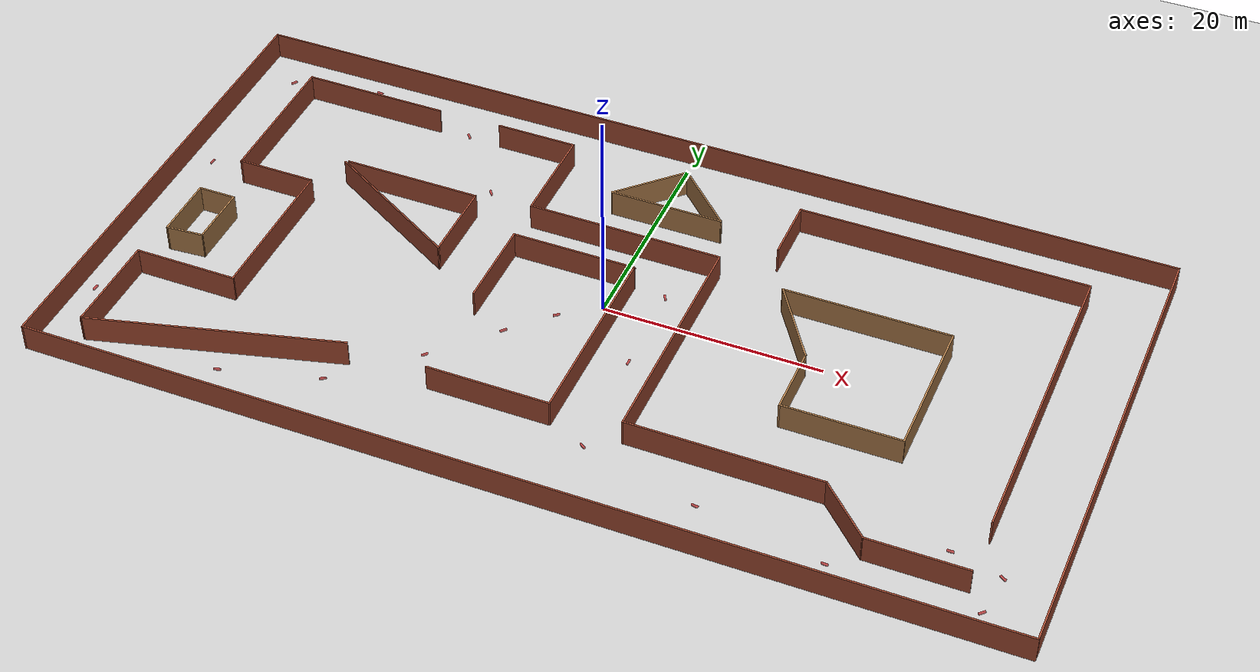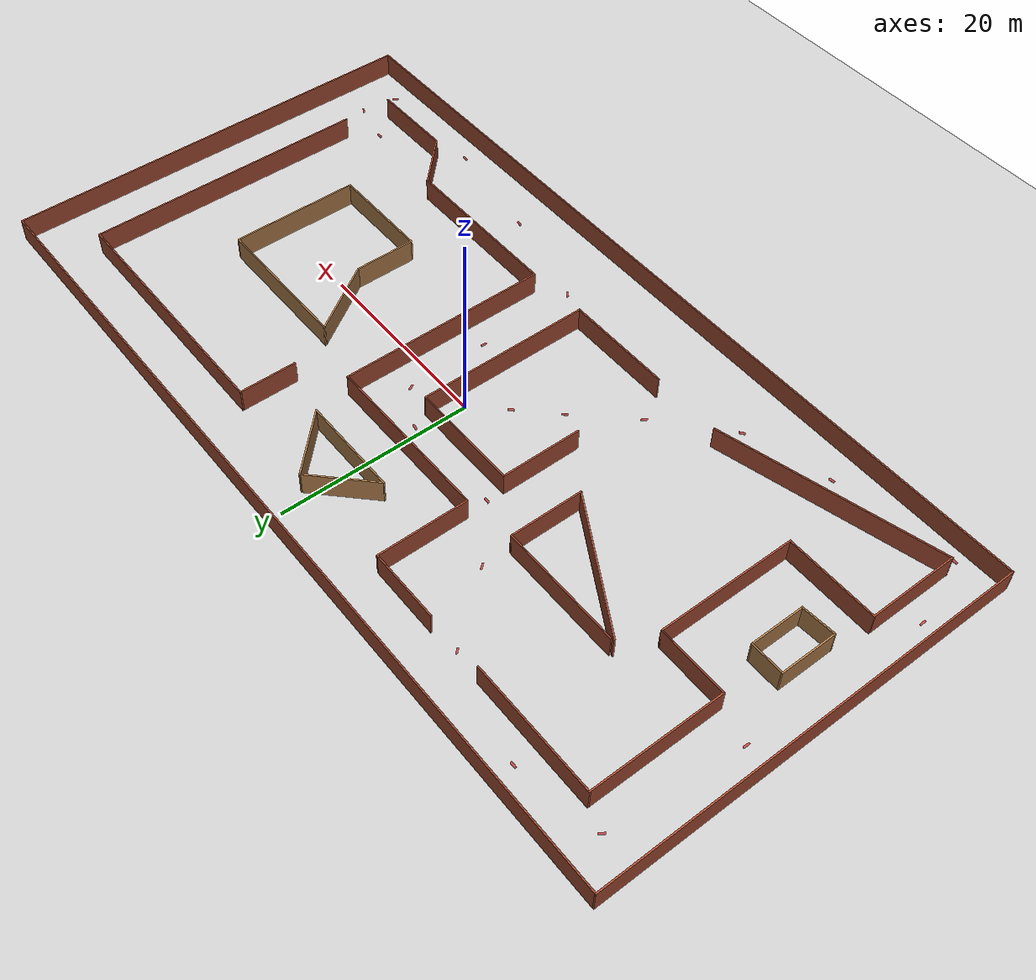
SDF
<sdf version="1.6">
 <world name="default">
  <model name="ground_plane">
   <static>1</static>
   <link name="link">
    <collision name="collision">
     <geometry><plane><normal>0 0 1</normal><size>100 100</size></plane></geometry>
     <surface><friction><ode><mu>100</mu><mu2>50</mu2></ode></friction></surface>
    </collision>
    <visual name="visual">
     <cast_shadows>0</cast_shadows>
     <geometry><plane><normal>0 0 1</normal><size>100 100</size></plane></geometry>
     <material>
      <script><uri>file://media/materials/scripts/gazebo.material</uri><name>Gazebo/Tertiary</name></script>
     </material>
    </visual>
   </link>
  </model>
  <light name="sun" type="directional">
   <pose>0 0 10 0 -0 0</pose>
   <diffuse>0.8 0.8 0.8 1</diffuse>
   <specular>0.2 0.2 0.2 1</specular>
   <attenuation>
    <range>1000</range>
    <constant>0.9</constant>
    <linear>0.01</linear>
    <quadratic>0.001</quadratic>
   </attenuation>
   <direction>-0.5 0.1 -0.9</direction>
  </light>
  <model name="maze_office">
   <pose>0.883362 -0.984451 0 0 -0 0</pose>
   <link name="Wall_10">
    <collision name="Wall_10_Collision">
     <geometry><box><size>13.5 0.15 2.5</size></box></geometry>
     <pose>0 0 1.25 0 -0 0</pose>
    </collision>
    <visual name="Wall_10_Visual">
     <pose>0 0 1.25 0 -0 0</pose>
     <geometry><box><size>13.5 0.15 2.5</size></box></geometry>
     <material>
      <script><uri>file://media/materials/scripts/gazebo.material</uri><name>Gazebo/Bricks</name></script>
      <ambient>1 1 1 1</ambient>
     </material>
     <meta><layer>0</layer></meta>
    </visual>
    <pose>-31.0468 17.7223 0 0 -0 3.14159</pose>
   </link>
   <link name="Wall_11">
    <collision name="Wall_11_Collision">
     <geometry><box><size>13.75 0.15 2.5</size></box></geometry>
     <pose>0 0 1.25 0 -0 0</pose>
    </collision>
    <visual name="Wall_11_Visual">
     <pose>0 0 1.25 0 -0 0</pose>
     <geometry><box><size>13.75 0.15 2.5</size></box></geometry>
     <material>
      <script><uri>file://media/materials/scripts/gazebo.material</uri><name>Gazebo/Bricks</name></script>
      <ambient>1 1 1 1</ambient>
     </material>
     <meta><layer>0</layer></meta>
    </visual>
    <pose>-37.7218 10.9223 0 0 -0 -1.5708</pose>
   </link>
   <link name="Wall_12">
    <collision name="Wall_12_Collision">
     <geometry><box><size>7.25 0.15 2.5</size></box></geometry>
     <pose>0 0 1.25 0 -0 0</pose>
    </collision>
    <visual name="Wall_12_Visual">
     <pose>0 0 1.25 0 -0 0</pose>
     <geometry><box><size>7.25 0.15 2.5</size></box></geometry>
     <material>
      <script><uri>file://media/materials/scripts/gazebo.material</uri><name>Gazebo/Bricks</name></script>
      <ambient>1 1 1 1</ambient>
     </material>
     <meta><layer>0</layer></meta>
    </visual>
    <pose>-34.1718 4.12233 0 0 -0 0</pose>
   </link>
   <link name="Wall_13">
    <collision name="Wall_13_Collision">
     <geometry><box><size>14.5 0.15 2.5</size></box></geometry>
     <pose>0 0 1.25 0 -0 0</pose>
    </collision>
    <visual name="Wall_13_Visual">
     <pose>0 0 1.25 0 -0 0</pose>
     <geometry><box><size>14.5 0.15 2.5</size></box></geometry>
     <material>
      <script><uri>file://media/materials/scripts/gazebo.material</uri><name>Gazebo/Bricks</name></script>
      <ambient>1 1 1 1</ambient>
     </material>
     <meta><layer>0</layer></meta>
    </visual>
    <pose>-30.6218 -3.05267 0 0 -0 -1.5708</pose>
   </link>
   <link name="Wall_14">
    <collision name="Wall_14_Collision">
     <geometry><box><size>9.5 0.15 2.5</size></box></geometry>
     <pose>0 0 1.25 0 -0 0</pose>
    </collision>
    <visual name="Wall_14_Visual">
     <pose>0 0 1.25 0 -0 0</pose>
     <geometry><box><size>9.5 0.15 2.5</size></box></geometry>
     <material>
      <script><uri>file://media/materials/scripts/gazebo.material</uri><name>Gazebo/Bricks</name></script>
      <ambient>1 1 1 1</ambient>
     </material>
     <meta><layer>0</layer></meta>
    </visual>
    <pose>-35.2968 -10.2277 0 0 -0 3.14159</pose>
   </link>
   <link name="Wall_15">
    <collision name="Wall_15_Collision">
     <geometry><box><size>9.5 0.15 2.5</size></box></geometry>
     <pose>0 0 1.25 0 -0 0</pose>
    </collision>
    <visual name="Wall_15_Visual">
     <pose>0 0 1.25 0 -0 0</pose>
     <geometry><box><size>9.5 0.15 2.5</size></box></geometry>
     <material>
      <script><uri>file://media/materials/scripts/gazebo.material</uri><name>Gazebo/Bricks</name></script>
      <ambient>1 1 1 1</ambient>
     </material>
     <meta><layer>0</layer></meta>
    </visual>
    <pose>-39.9718 -14.9027 0 0 -0 -1.5708</pose>
   </link>
   <link name="Wall_17">
    <collision name="Wall_17_Collision">
     <geometry><box><size>23 0.15 2.5</size></box></geometry>
     <pose>0 0 1.25 0 -0 0</pose>
    </collision>
    <visual name="Wall_17_Visual">
     <pose>0 0 1.25 0 -0 0</pose>
     <geometry><box><size>23 0.15 2.5</size></box></geometry>
     <material>
      <script><uri>file://media/materials/scripts/gazebo.material</uri><name>Gazebo/Bricks</name></script>
      <ambient>1 1 1 1</ambient>
     </material>
     <meta><layer>0</layer></meta>
    </visual>
    <pose>-28.9361 -16.6207 0 0 -0 0.261799</pose>
   </link>
   <link name="Wall_19">
    <collision name="Wall_19_Collision">
     <geometry><box><size>11.25 0.15 2.5</size></box></geometry>
     <pose>0 0 1.25 0 -0 0</pose>
    </collision>
    <visual name="Wall_19_Visual">
     <pose>0 0 1.25 0 -0 0</pose>
     <geometry><box><size>11.25 0.15 2.5</size></box></geometry>
     <material>
      <script><uri>file://media/materials/scripts/gazebo.material</uri><name>Gazebo/Bricks</name></script>
      <ambient>1 1 1 1</ambient>
     </material>
     <meta><layer>0</layer></meta>
    </visual>
    <pose>-4.96128 -13.7113 0 0 -0 0</pose>
   </link>
   <link name="Wall_20">
    <collision name="Wall_20_Collision">
     <geometry><box><size>18.25 0.15 2.5</size></box></geometry>
     <pose>0 0 1.25 0 -0 0</pose>
    </collision>
    <visual name="Wall_20_Visual">
     <pose>0 0 1.25 0 -0 0</pose>
     <geometry><box><size>18.25 0.15 2.5</size></box></geometry>
     <material>
      <script><uri>file://media/materials/scripts/gazebo.material</uri><name>Gazebo/Bricks</name></script>
      <ambient>1 1 1 1</ambient>
     </material>
     <meta><layer>0</layer></meta>
    </visual>
    <pose>0.588724 -4.66132 0 0 -0 1.5708</pose>
   </link>
   <link name="Wall_21">
    <collision name="Wall_21_Collision">
     <geometry><box><size>11.5 0.15 2.5</size></box></geometry>
     <pose>0 0 1.25 0 -0 0</pose>
    </collision>
    <visual name="Wall_21_Visual">
     <pose>0 0 1.25 0 -0 0</pose>
     <geometry><box><size>11.5 0.15 2.5</size></box></geometry>
     <material>
      <script><uri>file://media/materials/scripts/gazebo.material</uri><name>Gazebo/Bricks</name></script>
      <ambient>1 1 1 1</ambient>
     </material>
     <meta><layer>0</layer></meta>
    </visual>
    <pose>-5.08628 4.38868 0 0 -0 3.14159</pose>
   </link>
   <link name="Wall_22">
    <collision name="Wall_22_Collision">
     <geometry><box><size>8.5 0.15 2.5</size></box></geometry>
     <pose>0 0 1.25 0 -0 0</pose>
    </collision>
    <visual name="Wall_22_Visual">
     <pose>0 0 1.25 0 -0 0</pose>
     <geometry><box><size>8.5 0.15 2.5</size></box></geometry>
     <material>
      <script><uri>file://media/materials/scripts/gazebo.material</uri><name>Gazebo/Bricks</name></script>
      <ambient>1 1 1 1</ambient>
     </material>
     <meta><layer>0</layer></meta>
    </visual>
    <pose>-10.7613 0.213675 0 0 -0 -1.5708</pose>
   </link>
   <link name="Wall_24">
    <collision name="Wall_24_Collision">
     <geometry><box><size>7.5 0.15 2.5</size></box></geometry>
     <pose>0 0 1.25 0 -0 0</pose>
    </collision>
    <visual name="Wall_24_Visual">
     <pose>0 0 1.25 0 -0 0</pose>
     <geometry><box><size>7.5 0.15 2.5</size></box></geometry>
     <material>
      <script><uri>file://media/materials/scripts/gazebo.material</uri><name>Gazebo/Bricks</name></script>
      <ambient>1 1 1 1</ambient>
     </material>
     <meta><layer>0</layer></meta>
    </visual>
    <pose>-14.6328 17.8461 0 0 -0 0</pose>
   </link>
   <link name="Wall_25">
    <collision name="Wall_25_Collision">
     <geometry><box><size>9.5 0.15 2.5</size></box></geometry>
     <pose>0 0 1.25 0 -0 0</pose>
    </collision>
    <visual name="Wall_25_Visual">
     <pose>0 0 1.25 0 -0 0</pose>
     <geometry><box><size>9.5 0.15 2.5</size></box></geometry>
     <material>
      <script><uri>file://media/materials/scripts/gazebo.material</uri><name>Gazebo/Bricks</name></script>
      <ambient>1 1 1 1</ambient>
     </material>
     <meta><layer>0</layer></meta>
    </visual>
    <pose>-10.9578 13.1711 0 0 -0 -1.5708</pose>
   </link>
   <link name="Wall_26">
    <collision name="Wall_26_Collision">
     <geometry><box><size>18 0.15 2.5</size></box></geometry>
     <pose>0 0 1.25 0 -0 0</pose>
    </collision>
    <visual name="Wall_26_Visual">
     <pose>0 0 1.25 0 -0 0</pose>
     <geometry><box><size>18 0.15 2.5</size></box></geometry>
     <material>
      <script><uri>file://media/materials/scripts/gazebo.material</uri><name>Gazebo/Bricks</name></script>
      <ambient>1 1 1 1</ambient>
     </material>
     <meta><layer>0</layer></meta>
    </visual>
    <pose>-2.03281 8.49608 0 0 -0 0</pose>
   </link>
   <link name="Wall_27">
    <collision name="Wall_27_Collision">
     <geometry><box><size>22 0.15 2.5</size></box></geometry>
     <pose>0 0 1.25 0 -0 0</pose>
    </collision>
    <visual name="Wall_27_Visual">
     <pose>0 0 1.25 0 -0 0</pose>
     <geometry><box><size>22 0.15 2.5</size></box></geometry>
     <material>
      <script><uri>file://media/materials/scripts/gazebo.material</uri><name>Gazebo/Bricks</name></script>
      <ambient>1 1 1 1</ambient>
     </material>
     <meta><layer>0</layer></meta>
    </visual>
    <pose>6.89219 -2.42892 0 0 -0 -1.5708</pose>
   </link>
   <link name="Wall_28">
    <collision name="Wall_28_Collision">
     <geometry><box><size>17.5 0.15 2.5</size></box></geometry>
     <pose>0 0 1.25 0 -0 0</pose>
    </collision>
    <visual name="Wall_28_Visual">
     <pose>0 0 1.25 0 -0 0</pose>
     <geometry><box><size>17.5 0.15 2.5</size></box></geometry>
     <material>
      <script><uri>file://media/materials/scripts/gazebo.material</uri><name>Gazebo/Bricks</name></script>
      <ambient>1 1 1 1</ambient>
     </material>
     <meta><layer>0</layer></meta>
    </visual>
    <pose>15.5672 -13.3539 0 0 -0 0</pose>
   </link>
   <link name="Wall_29">
    <collision name="Wall_29_Collision">
     <geometry><box><size>6.5 0.15 2.5</size></box></geometry>
     <pose>0 0 1.25 0 -0 0</pose>
    </collision>
    <visual name="Wall_29_Visual">
     <pose>0 0 1.25 0 -0 0</pose>
     <geometry><box><size>6.5 0.15 2.5</size></box></geometry>
     <material>
      <script><uri>file://media/materials/scripts/gazebo.material</uri><name>Gazebo/Bricks</name></script>
      <ambient>1 1 1 1</ambient>
     </material>
     <meta><layer>0</layer></meta>
    </visual>
    <pose>26.4873 -15.599 0 0 -0 -0.785398</pose>
   </link>
   <link name="Wall_3">
    <collision name="Wall_3_Collision">
     <geometry><box><size>88 0.15 2.5</size></box></geometry>
     <pose>0 0 1.25 0 -0 0</pose>
    </collision>
    <visual name="Wall_3_Visual">
     <pose>0 0 1.25 0 -0 0</pose>
     <geometry><box><size>88 0.15 2.5</size></box></geometry>
     <material>
      <script><uri>file://media/materials/scripts/gazebo.material</uri><name>Gazebo/Bricks</name></script>
      <ambient>1 1 1 1</ambient>
     </material>
     <meta><layer>0</layer></meta>
    </visual>
    <pose>-1e-06 22.425 0 0 -0 0</pose>
   </link>
   <link name="Wall_30">
    <collision name="Wall_30_Collision">
     <geometry><box><size>8.88621 0.15 2.5</size></box></geometry>
     <pose>0 0 1.25 0 -0 0</pose>
    </collision>
    <visual name="Wall_30_Visual">
     <pose>0 0 1.25 0 -0 0</pose>
     <geometry><box><size>8.88621 0.15 2.5</size></box></geometry>
     <material>
      <script><uri>file://media/materials/scripts/gazebo.material</uri><name>Gazebo/Bricks</name></script>
      <ambient>1 1 1 1</ambient>
     </material>
     <meta><layer>0</layer></meta>
    </visual>
    <pose>33.1004 -17.844 0 0 -0 0</pose>
   </link>
   <link name="Wall_32">
    <collision name="Wall_32_Collision">
     <geometry><box><size>26.3862 0.15 2.5</size></box></geometry>
     <pose>0 0 1.25 0 -0 0</pose>
    </collision>
    <visual name="Wall_32_Visual">
     <pose>0 0 1.25 0 -0 0</pose>
     <geometry><box><size>26.3862 0.15 2.5</size></box></geometry>
     <material>
      <script><uri>file://media/materials/scripts/gazebo.material</uri><name>Gazebo/Bricks</name></script>
      <ambient>1 1 1 1</ambient>
     </material>
     <meta><layer>0</layer></meta>
    </visual>
    <pose>24.3504 17.256 0 0 -0 3.14159</pose>
   </link>
   <link name="Wall_33">
    <collision name="Wall_33_Collision">
     <geometry><box><size>6 0.15 2.5</size></box></geometry>
     <pose>0 0 1.25 0 -0 0</pose>
    </collision>
    <visual name="Wall_33_Visual">
     <pose>0 0 1.25 0 -0 0</pose>
     <geometry><box><size>6 0.15 2.5</size></box></geometry>
     <material>
      <script><uri>file://media/materials/scripts/gazebo.material</uri><name>Gazebo/Bricks</name></script>
      <ambient>1 1 1 1</ambient>
     </material>
     <meta><layer>0</layer></meta>
    </visual>
    <pose>11.2323 14.331 0 0 -0 -1.5708</pose>
   </link>
   <link name="Wall_35">
    <collision name="Wall_35_Collision">
     <geometry><box><size>29.75 0.15 2.5</size></box></geometry>
     <pose>0 0 1.25 0 -0 0</pose>
    </collision>
    <visual name="Wall_35_Visual">
     <pose>0 0 1.25 0 -0 0</pose>
     <geometry><box><size>29.75 0.15 2.5</size></box></geometry>
     <material>
      <script><uri>file://media/materials/scripts/gazebo.material</uri><name>Gazebo/Bricks</name></script>
      <ambient>1 1 1 1</ambient>
     </material>
     <meta><layer>0</layer></meta>
    </visual>
    <pose>37.4685 2.45595 0 0 -0 -1.5708</pose>
   </link>
   <link name="Wall_37">
    <collision name="Wall_37_Collision">
     <geometry><box><size>12.75 0.15 2.5</size></box></geometry>
     <pose>0 0 1.25 0 -0 0</pose>
    </collision>
    <visual name="Wall_37_Visual">
     <pose>0 0 1.25 0 -0 0</pose>
     <geometry><box><size>12.75 0.15 2.5</size></box></geometry>
     <material>
      <script><uri>file://media/materials/scripts/gazebo.material</uri><name>Gazebo/Bricks</name></script>
      <ambient>1 1 1 1</ambient>
     </material>
     <meta><layer>0</layer></meta>
    </visual>
    <pose>-22.4032 7.82196 0 0 -0 0</pose>
   </link>
   <link name="Wall_38">
    <collision name="Wall_38_Collision">
     <geometry><box><size>7.75 0.15 2.5</size></box></geometry>
     <pose>0 0 1.25 0 -0 0</pose>
    </collision>
    <visual name="Wall_38_Visual">
     <pose>0 0 1.25 0 -0 0</pose>
     <geometry><box><size>7.75 0.15 2.5</size></box></geometry>
     <material>
      <script><uri>file://media/materials/scripts/gazebo.material</uri><name>Gazebo/Bricks</name></script>
      <ambient>1 1 1 1</ambient>
     </material>
     <meta><layer>0</layer></meta>
    </visual>
    <pose>-16.1032 4.02196 0 0 -0 -1.5708</pose>
   </link>
   <link name="Wall_39">
    <collision name="Wall_39_Collision">
     <geometry><box><size>15 0.15 2.5</size></box></geometry>
     <pose>0 0 1.25 0 -0 0</pose>
    </collision>
    <visual name="Wall_39_Visual">
     <pose>0 0 1.25 0 -0 0</pose>
     <geometry><box><size>15 0.15 2.5</size></box></geometry>
     <material>
      <script><uri>file://media/materials/scripts/gazebo.material</uri><name>Gazebo/Bricks</name></script>
      <ambient>1 1 1 1</ambient>
     </material>
     <meta><layer>0</layer></meta>
    </visual>
    <pose>-22.5334 3.93446 0 0 -0 2.61799</pose>
   </link>
   <link name="Wall_4">
    <collision name="Wall_4_Collision">
     <geometry><box><size>45 0.15 2.5</size></box></geometry>
     <pose>0 0 1.25 0 -0 0</pose>
    </collision>
    <visual name="Wall_4_Visual">
     <pose>0 0 1.25 0 -0 0</pose>
     <geometry><box><size>45 0.15 2.5</size></box></geometry>
     <material>
      <script><uri>file://media/materials/scripts/gazebo.material</uri><name>Gazebo/Bricks</name></script>
      <ambient>1 1 1 1</ambient>
     </material>
     <meta><layer>0</layer></meta>
    </visual>
    <pose>43.925 -1e-06 0 0 -0 -1.5708</pose>
   </link>
   <link name="Wall_41">
    <collision name="Wall_41_Collision">
     <geometry><box><size>6 0.15 2.5</size></box></geometry>
     <pose>0 0 1.25 0 -0 0</pose>
    </collision>
    <visual name="Wall_41_Visual">
     <pose>0 0 1.25 0 -0 0</pose>
     <geometry><box><size>6 0.15 2.5</size></box></geometry>
     <material>
      <script><uri>file://media/materials/scripts/gazebo.material</uri><name>Gazebo/Wood</name></script>
      <ambient>1 1 1 1</ambient>
     </material>
     <meta><layer>0</layer></meta>
    </visual>
    <pose>-39.2223 -3.60856 0 0 -0 1.5708</pose>
   </link>
   <link name="Wall_42">
    <collision name="Wall_42_Collision">
     <geometry><box><size>3.5 0.15 2.5</size></box></geometry>
     <pose>0 0 1.25 0 -0 0</pose>
    </collision>
    <visual name="Wall_42_Visual">
     <pose>0 0 1.25 0 -0 0</pose>
     <geometry><box><size>3.5 0.15 2.5</size></box></geometry>
     <material>
      <script><uri>file://media/materials/scripts/gazebo.material</uri><name>Gazebo/Wood</name></script>
      <ambient>1 1 1 1</ambient>
     </material>
     <meta><layer>0</layer></meta>
    </visual>
    <pose>-37.5473 -0.683562 0 0 -0 0</pose>
   </link>
   <link name="Wall_43">
    <collision name="Wall_43_Collision">
     <geometry><box><size>5.75 0.15 2.5</size></box></geometry>
     <pose>0 0 1.25 0 -0 0</pose>
    </collision>
    <visual name="Wall_43_Visual">
     <pose>0 0 1.25 0 -0 0</pose>
     <geometry><box><size>5.75 0.15 2.5</size></box></geometry>
     <material>
      <script><uri>file://media/materials/scripts/gazebo.material</uri><name>Gazebo/Wood</name></script>
      <ambient>1 1 1 1</ambient>
     </material>
     <meta><layer>0</layer></meta>
    </visual>
    <pose>-35.8723 -3.48356 0 0 -0 -1.5708</pose>
   </link>
   <link name="Wall_44">
    <collision name="Wall_44_Collision">
     <geometry><box><size>3.50931 0.15 2.5</size></box></geometry>
     <pose>0 0 1.25 0 -0 0</pose>
    </collision>
    <visual name="Wall_44_Visual">
     <pose>0 0 1.25 0 -0 0</pose>
     <geometry><box><size>3.50931 0.15 2.5</size></box></geometry>
     <material>
      <script><uri>file://media/materials/scripts/gazebo.material</uri><name>Gazebo/Wood</name></script>
      <ambient>1 1 1 1</ambient>
     </material>
     <meta><layer>0</layer></meta>
    </visual>
    <pose>-37.5473 -6.40856 0 0 -0 -3.0671</pose>
   </link>
   <link name="Wall_46">
    <collision name="Wall_46_Collision">
     <geometry><box><size>15.25 0.15 2.5</size></box></geometry>
     <pose>0 0 1.25 0 -0 0</pose>
    </collision>
    <visual name="Wall_46_Visual">
     <pose>0 0 1.25 0 -0 0</pose>
     <geometry><box><size>15.25 0.15 2.5</size></box></geometry>
     <material>
      <script><uri>file://media/materials/scripts/gazebo.material</uri><name>Gazebo/Wood</name></script>
      <ambient>1 1 1 1</ambient>
     </material>
     <meta><layer>0</layer></meta>
    </visual>
    <pose>20.9233 6.70817 0 0 -0 0</pose>
   </link>
   <link name="Wall_47">
    <collision name="Wall_47_Collision">
     <geometry><box><size>13.5 0.15 2.5</size></box></geometry>
     <pose>0 0 1.25 0 -0 0</pose>
    </collision>
    <visual name="Wall_47_Visual">
     <pose>0 0 1.25 0 -0 0</pose>
     <geometry><box><size>13.5 0.15 2.5</size></box></geometry>
     <material>
      <script><uri>file://media/materials/scripts/gazebo.material</uri><name>Gazebo/Wood</name></script>
      <ambient>1 1 1 1</ambient>
     </material>
     <meta><layer>0</layer></meta>
    </visual>
    <pose>28.4733 0.033173 0 0 -0 -1.5708</pose>
   </link>
   <link name="Wall_48">
    <collision name="Wall_48_Collision">
     <geometry><box><size>10.75 0.15 2.5</size></box></geometry>
     <pose>0 0 1.25 0 -0 0</pose>
    </collision>
    <visual name="Wall_48_Visual">
     <pose>0 0 1.25 0 -0 0</pose>
     <geometry><box><size>10.75 0.15 2.5</size></box></geometry>
     <material>
      <script><uri>file://media/materials/scripts/gazebo.material</uri><name>Gazebo/Wood</name></script>
      <ambient>1 1 1 1</ambient>
     </material>
     <meta><layer>0</layer></meta>
    </visual>
    <pose>23.1733 -6.64183 0 0 -0 3.14159</pose>
   </link>
   <link name="Wall_49">
    <collision name="Wall_49_Collision">
     <geometry><box><size>6.5 0.15 2.5</size></box></geometry>
     <pose>0 0 1.25 0 -0 0</pose>
    </collision>
    <visual name="Wall_49_Visual">
     <pose>0 0 1.25 0 -0 0</pose>
     <geometry><box><size>6.5 0.15 2.5</size></box></geometry>
     <material>
      <script><uri>file://media/materials/scripts/gazebo.material</uri><name>Gazebo/Wood</name></script>
      <ambient>1 1 1 1</ambient>
     </material>
     <meta><layer>0</layer></meta>
    </visual>
    <pose>17.8733 -3.46683 0 0 -0 1.5708</pose>
   </link>
   <link name="Wall_50">
    <collision name="Wall_50_Collision">
     <geometry><box><size>8.47166 0.15 2.5</size></box></geometry>
     <pose>0 0 1.25 0 -0 0</pose>
    </collision>
    <visual name="Wall_50_Visual">
     <pose>0 0 1.25 0 -0 0</pose>
     <geometry><box><size>8.47166 0.15 2.5</size></box></geometry>
     <material>
      <script><uri>file://media/materials/scripts/gazebo.material</uri><name>Gazebo/Wood</name></script>
      <ambient>1 1 1 1</ambient>
     </material>
     <meta><layer>0</layer></meta>
    </visual>
    <pose>15.6234 3.20817 0 0 -0 2.14213</pose>
   </link>
   <link name="Wall_53">
    <collision name="Wall_53_Collision">
     <geometry><box><size>10.5 0.15 2.5</size></box></geometry>
     <pose>0 0 1.25 0 -0 0</pose>
    </collision>
    <visual name="Wall_53_Visual">
     <pose>0 0 1.25 0 -0 0</pose>
     <geometry><box><size>10.5 0.15 2.5</size></box></geometry>
     <material>
      <script><uri>file://media/materials/scripts/gazebo.material</uri><name>Gazebo/Wood</name></script>
      <ambient>1 1 1 1</ambient>
     </material>
     <meta><layer>0</layer></meta>
    </visual>
    <pose>0.108923 13.0197 0 0 -0 0</pose>
   </link>
   <link name="Wall_54">
    <collision name="Wall_54_Collision">
     <geometry><box><size>7.5 0.15 2.5</size></box></geometry>
     <pose>0 0 1.25 0 -0 0</pose>
    </collision>
    <visual name="Wall_54_Visual">
     <pose>0 0 1.25 0 -0 0</pose>
     <geometry><box><size>7.5 0.15 2.5</size></box></geometry>
     <material>
      <script><uri>file://media/materials/scripts/gazebo.material</uri><name>Gazebo/Wood</name></script>
      <ambient>1 1 1 1</ambient>
     </material>
     <meta><layer>0</layer></meta>
    </visual>
    <pose>2.68531 15.6183 0 0 -0 2.35619</pose>
   </link>
   <link name="Wall_55">
    <collision name="Wall_55_Collision">
     <geometry><box><size>7.46862 0.15 2.5</size></box></geometry>
     <pose>0 0 1.25 0 -0 0</pose>
    </collision>
    <visual name="Wall_55_Visual">
     <pose>0 0 1.25 0 -0 0</pose>
     <geometry><box><size>7.46862 0.15 2.5</size></box></geometry>
     <material>
      <script><uri>file://media/materials/scripts/gazebo.material</uri><name>Gazebo/Wood</name></script>
      <ambient>1 1 1 1</ambient>
     </material>
     <meta><layer>0</layer></meta>
    </visual>
    <pose>-2.48969 15.6183 0 0 -0 -2.3519</pose>
   </link>
   <link name="Wall_7">
    <collision name="Wall_7_Collision">
     <geometry><box><size>88 0.15 2.5</size></box></geometry>
     <pose>0 0 1.25 0 -0 0</pose>
    </collision>
    <visual name="Wall_7_Visual">
     <pose>0 0 1.25 0 -0 0</pose>
     <geometry><box><size>88 0.15 2.5</size></box></geometry>
     <material>
      <script><uri>file://media/materials/scripts/gazebo.material</uri><name>Gazebo/Bricks</name></script>
      <ambient>1 1 1 1</ambient>
     </material>
     <meta><layer>0</layer></meta>
    </visual>
    <pose>-1e-06 -22.425 0 0 -0 3.14159</pose>
   </link>
   <link name="Wall_8">
    <collision name="Wall_8_Collision">
     <geometry><box><size>45 0.15 2.5</size></box></geometry>
     <pose>0 0 1.25 0 -0 0</pose>
    </collision>
    <visual name="Wall_8_Visual">
     <pose>0 0 1.25 0 -0 0</pose>
     <geometry><box><size>45 0.15 2.5</size></box></geometry>
     <material>
      <script><uri>file://media/materials/scripts/gazebo.material</uri><name>Gazebo/Bricks</name></script>
      <ambient>1 1 1 1</ambient>
     </material>
     <meta><layer>0</layer></meta>
    </visual>
    <pose>-43.925 -1e-06 0 0 -0 1.5708</pose>
   </link>
   <static>1</static>
  </model>
  <model name="t1">
   <link name="link_0">
    <inertial>
     <mass>0.0001</mass>
     <inertia><ixx>1e-05</ixx><ixy>0</ixy><ixz>0</ixz><iyy>1e-05</iyy><iyz>0</iyz><izz>0</izz></inertia>
     <pose>0 0 0.5 0 -0 0</pose>
    </inertial>
    <pose>0 0 -0 -0.004499 -0.022471 -1.37319</pose>
    <gravity>0</gravity>
    <visual name="visual">
     <geometry><box><size>0.160542 0.601993 0.15531</size></box></geometry>
     <material>
      <lighting>1</lighting>
      <script><uri>file://media/materials/scripts/gazebo.material</uri><name>Gazebo/Red</name></script>
      <shader type="vertex"><normal_map>__default__</normal_map></shader>
      <ambient>1 0 0 1</ambient>
      <diffuse>1 0.2 0.2 1</diffuse>
      <specular>0.1 0.1 0.1 1</specular>
      <emissive>0 0 0 1</emissive>
     </material>
     <transparency>0.25</transparency>
    </visual>
   </link>
   <static>0</static>
   <pose>-3.11436 -2.83804 0.575505 0 -0 0.52861</pose>
  </model>
  <gravity>0 0 -9.8</gravity>
  <magnetic_field>6e-06 2.3e-05 -4.2e-05</magnetic_field>
  <atmosphere type="adiabatic"/>
  <physics name="default_physics" default="0" type="ode">
   <max_step_size>0.001</max_step_size>
   <real_time_factor>1</real_time_factor>
   <real_time_update_rate>1000</real_time_update_rate>
  </physics>
  <scene><ambient>0.4 0.4 0.4 1</ambient><background>0.7 0.7 0.7 1</background><shadows>1</shadows></scene>
  <audio><device>default</device></audio>
  <spherical_coordinates>
   <surface_model>EARTH_WGS84</surface_model>
   <latitude_deg>0</latitude_deg>
   <longitude_deg>0</longitude_deg>
   <elevation>0</elevation>
   <heading_deg>0</heading_deg>
  </spherical_coordinates>
  <model name="t2">
   <link name="link_0">
    <inertial>
     <mass>0.0001</mass>
     <inertia><ixx>1e-05</ixx><ixy>0</ixy><ixz>0</ixz><iyy>1e-05</iyy><iyz>0</iyz><izz>0</izz></inertia>
     <pose>0 0 0.5 0 -0 0</pose>
    </inertial>
    <pose>0 0 -0 -0.004499 -0.022471 -1.37319</pose>
    <gravity>0</gravity>
    <visual name="visual">
     <geometry><box><size>0.160542 0.601993 0.15531</size></box></geometry>
     <material>
      <lighting>1</lighting>
      <script><uri>file://media/materials/scripts/gazebo.material</uri><name>Gazebo/Red</name></script>
      <shader type="vertex"><normal_map>__default__</normal_map></shader>
      <ambient>1 0 0 1</ambient>
      <diffuse>1 0.2 0.2 1</diffuse>
      <specular>0.1 0.1 0.1 1</specular>
      <emissive>0 0 0 1</emissive>
     </material>
     <transparency>0.25</transparency>
    </visual>
   </link>
   <static>0</static>
   <pose>-6.51404 -6.36422 0.575505 0 -0 0.688754</pose>
  </model>
  <model name="t3">
   <link name="link_0">
    <inertial>
     <mass>0.0001</mass>
     <inertia><ixx>1e-05</ixx><ixy>0</ixy><ixz>0</ixz><iyy>1e-05</iyy><iyz>0</iyz><izz>0</izz></inertia>
     <pose>0 0 0.5 0 -0 0</pose>
    </inertial>
    <pose>0 0 -0 -0.004499 -0.022471 -1.37319</pose>
    <gravity>0</gravity>
    <visual name="visual">
     <geometry><box><size>0.160542 0.601993 0.15531</size></box></geometry>
     <material>
      <lighting>1</lighting>
      <script><uri>file://media/materials/scripts/gazebo.material</uri><name>Gazebo/Red</name></script>
      <shader type="vertex"><normal_map>__default__</normal_map></shader>
      <ambient>1 0 0 1</ambient>
      <diffuse>1 0.2 0.2 1</diffuse>
      <specular>0.1 0.1 0.1 1</specular>
      <emissive>0 0 0 1</emissive>
     </material>
     <transparency>0.25</transparency>
    </visual>
   </link>
   <static>0</static>
   <pose>-11.3584 -11.6418 0.575505 0 -0 0.631759</pose>
  </model>
  <model name="t4">
   <link name="link_0">
    <inertial>
     <mass>0.0001</mass>
     <inertia><ixx>1e-05</ixx><ixy>0</ixy><ixz>0</ixz><iyy>1e-05</iyy><iyz>0</iyz><izz>0</izz></inertia>
     <pose>0 0 0.5 0 -0 0</pose>
    </inertial>
    <pose>0 0 -0 -0.004499 -0.022471 -1.37319</pose>
    <gravity>0</gravity>
    <visual name="visual">
     <geometry><box><size>0.160542 0.601993 0.15531</size></box></geometry>
     <material>
      <lighting>1</lighting>
      <script><uri>file://media/materials/scripts/gazebo.material</uri><name>Gazebo/Red</name></script>
      <shader type="vertex"><normal_map>__default__</normal_map></shader>
      <ambient>1 0 0 1</ambient>
      <diffuse>1 0.2 0.2 1</diffuse>
      <specular>0.1 0.1 0.1 1</specular>
      <emissive>0 0 0 1</emissive>
     </material>
     <transparency>0.25</transparency>
    </visual>
   </link>
   <static>0</static>
   <pose>-17.8972 -17.525 0.575505 -0.043395 -0.013229 0.404121</pose>
  </model>
  <model name="t5">
   <link name="link_0">
    <inertial>
     <mass>0.0001</mass>
     <inertia><ixx>1e-05</ixx><ixy>0</ixy><ixz>0</ixz><iyy>1e-05</iyy><iyz>0</iyz><izz>0</izz></inertia>
     <pose>0 0 0.5 0 -0 0</pose>
    </inertial>
    <pose>0 0 -0 -0.004499 -0.022471 -1.37319</pose>
    <gravity>0</gravity>
    <visual name="visual">
     <geometry><box><size>0.160542 0.601993 0.15531</size></box></geometry>
     <material>
      <lighting>1</lighting>
      <script><uri>file://media/materials/scripts/gazebo.material</uri><name>Gazebo/Red</name></script>
      <shader type="vertex"><normal_map>__default__</normal_map></shader>
      <ambient>1 0 0 1</ambient>
      <diffuse>1 0.2 0.2 1</diffuse>
      <specular>0.1 0.1 0.1 1</specular>
      <emissive>0 0 0 1</emissive>
     </material>
     <transparency>0.25</transparency>
    </visual>
   </link>
   <static>0</static>
   <pose>-26.5506 -19.9629 0.575505 -0.047124 -0.041125 -0.017185</pose>
  </model>
  <model name="t6">
   <link name="link_0">
    <inertial>
     <mass>0.0001</mass>
     <inertia><ixx>1e-05</ixx><ixy>0</ixy><ixz>0</ixz><iyy>1e-05</iyy><iyz>0</iyz><izz>0</izz></inertia>
     <pose>0 0 0.5 0 -0 0</pose>
    </inertial>
    <pose>0 0 -0 -0.004499 -0.022471 -1.37319</pose>
    <gravity>0</gravity>
    <visual name="visual">
     <geometry><box><size>0.160542 0.601993 0.15531</size></box></geometry>
     <material>
      <lighting>1</lighting>
      <script><uri>file://media/materials/scripts/gazebo.material</uri><name>Gazebo/Red</name></script>
      <shader type="vertex"><normal_map>__default__</normal_map></shader>
      <ambient>1 0 0 1</ambient>
      <diffuse>1 0.2 0.2 1</diffuse>
      <specular>0.1 0.1 0.1 1</specular>
      <emissive>0 0 0 1</emissive>
     </material>
     <transparency>0.25</transparency>
    </visual>
   </link>
   <static>0</static>
   <pose>-38.8155 -21.7961 0.575505 0.011289 0.037721 -0.237553</pose>
  </model>
  <model name="t7">
   <link name="link_0">
    <inertial>
     <mass>0.0001</mass>
     <inertia><ixx>1e-05</ixx><ixy>0</ixy><ixz>0</ixz><iyy>1e-05</iyy><iyz>0</iyz><izz>0</izz></inertia>
     <pose>0 0 0.5 0 -0 0</pose>
    </inertial>
    <pose>0 0 -0 -0.004499 -0.022471 -1.37319</pose>
    <gravity>0</gravity>
    <visual name="visual">
     <geometry><box><size>0.160542 0.601993 0.15531</size></box></geometry>
     <material>
      <lighting>1</lighting>
      <script><uri>file://media/materials/scripts/gazebo.material</uri><name>Gazebo/Red</name></script>
      <shader type="vertex"><normal_map>__default__</normal_map></shader>
      <ambient>1 0 0 1</ambient>
      <diffuse>1 0.2 0.2 1</diffuse>
      <specular>0.1 0.1 0.1 1</specular>
      <emissive>0 0 0 1</emissive>
     </material>
     <transparency>0.25</transparency>
    </visual>
   </link>
   <static>0</static>
   <pose>-41.3006 -15.0986 0.575505 0.037478 -0.012071 1.35383</pose>
  </model>
  <model name="t8">
   <link name="link_0">
    <inertial>
     <mass>0.0001</mass>
     <inertia><ixx>1e-05</ixx><ixy>0</ixy><ixz>0</ixz><iyy>1e-05</iyy><iyz>0</iyz><izz>0</izz></inertia>
     <pose>0 0 0.5 0 -0 0</pose>
    </inertial>
    <pose>0 0 -0 -0.004499 -0.022471 -1.37319</pose>
    <gravity>0</gravity>
    <visual name="visual">
     <geometry><box><size>0.160542 0.601993 0.15531</size></box></geometry>
     <material>
      <lighting>1</lighting>
      <script><uri>file://media/materials/scripts/gazebo.material</uri><name>Gazebo/Red</name></script>
      <shader type="vertex"><normal_map>__default__</normal_map></shader>
      <ambient>1 0 0 1</ambient>
      <diffuse>1 0.2 0.2 1</diffuse>
      <specular>0.1 0.1 0.1 1</specular>
      <emissive>0 0 0 1</emissive>
     </material>
     <transparency>0.25</transparency>
    </visual>
   </link>
   <static>0</static>
   <pose>-40.5477 4.03241 0.575505 0.037814 -0.010974 1.32471</pose>
  </model>
  <model name="t9">
   <link name="link_0">
    <inertial>
     <mass>0.0001</mass>
     <inertia><ixx>1e-05</ixx><ixy>0</ixy><ixz>0</ixz><iyy>1e-05</iyy><iyz>0</iyz><izz>0</izz></inertia>
     <pose>0 0 0.5 0 -0 0</pose>
    </inertial>
    <pose>0 0 -0 -0.004499 -0.022471 -1.37319</pose>
    <gravity>0</gravity>
    <visual name="visual">
     <geometry><box><size>0.160542 0.601993 0.15531</size></box></geometry>
     <material>
      <lighting>1</lighting>
      <script><uri>file://media/materials/scripts/gazebo.material</uri><name>Gazebo/Red</name></script>
      <shader type="vertex"><normal_map>__default__</normal_map></shader>
      <ambient>1 0 0 1</ambient>
      <diffuse>1 0.2 0.2 1</diffuse>
      <specular>0.1 0.1 0.1 1</specular>
      <emissive>0 0 0 1</emissive>
     </material>
     <transparency>0.25</transparency>
    </visual>
   </link>
   <static>0</static>
   <pose>-39.2684 17.4737 0.575505 0.037889 0.01071 0.767038</pose>
  </model>
  <model name="t10">
   <link name="link_0">
    <inertial>
     <mass>0.0001</mass>
     <inertia><ixx>1e-05</ixx><ixy>0</ixy><ixz>0</ixz><iyy>1e-05</iyy><iyz>0</iyz><izz>0</izz></inertia>
     <pose>0 0 0.5 0 -0 0</pose>
    </inertial>
    <pose>0 0 -0 -0.004499 -0.022471 -1.37319</pose>
    <gravity>0</gravity>
    <visual name="visual">
     <geometry><box><size>0.160542 0.601993 0.15531</size></box></geometry>
     <material>
      <lighting>1</lighting>
      <script><uri>file://media/materials/scripts/gazebo.material</uri><name>Gazebo/Red</name></script>
      <shader type="vertex"><normal_map>__default__</normal_map></shader>
      <ambient>1 0 0 1</ambient>
      <diffuse>1 0.2 0.2 1</diffuse>
      <specular>0.1 0.1 0.1 1</specular>
      <emissive>0 0 0 1</emissive>
     </material>
     <transparency>0.25</transparency>
    </visual>
   </link>
   <static>0</static>
   <pose>-30.9897 19.1717 0.575505 0.0133 0.03706 -0.183754</pose>
  </model>
  <model name="t11">
   <link name="link_0">
    <inertial>
     <mass>0.0001</mass>
     <inertia><ixx>1e-05</ixx><ixy>0</ixy><ixz>0</ixz><iyy>1e-05</iyy><iyz>0</iyz><izz>0</izz></inertia>
     <pose>0 0 0.5 0 -0 0</pose>
    </inertial>
    <pose>0 0 -0 -0.004499 -0.022471 -1.37319</pose>
    <gravity>0</gravity>
    <visual name="visual">
     <geometry><box><size>0.160542 0.601993 0.15531</size></box></geometry>
     <material>
      <lighting>1</lighting>
      <script><uri>file://media/materials/scripts/gazebo.material</uri><name>Gazebo/Red</name></script>
      <shader type="vertex"><normal_map>__default__</normal_map></shader>
      <ambient>1 0 0 1</ambient>
      <diffuse>1 0.2 0.2 1</diffuse>
      <specular>0.1 0.1 0.1 1</specular>
      <emissive>0 0 0 1</emissive>
     </material>
     <transparency>0.25</transparency>
    </visual>
   </link>
   <static>0</static>
   <pose>-20.4275 16.4696 0.575505 0.01961 -0.034145 2.09173</pose>
  </model>
  <model name="t12">
   <link name="link_0">
    <inertial>
     <mass>0.0001</mass>
     <inertia><ixx>1e-05</ixx><ixy>0</ixy><ixz>0</ixz><iyy>1e-05</iyy><iyz>0</iyz><izz>0</izz></inertia>
     <pose>0 0 0.5 0 -0 0</pose>
    </inertial>
    <pose>0 0 -0 -0.004499 -0.022471 -1.37319</pose>
    <gravity>0</gravity>
    <visual name="visual">
     <geometry><box><size>0.160542 0.601993 0.15531</size></box></geometry>
     <material>
      <lighting>1</lighting>
      <script><uri>file://media/materials/scripts/gazebo.material</uri><name>Gazebo/Red</name></script>
      <shader type="vertex"><normal_map>__default__</normal_map></shader>
      <ambient>1 0 0 1</ambient>
      <diffuse>1 0.2 0.2 1</diffuse>
      <specular>0.1 0.1 0.1 1</specular>
      <emissive>0 0 0 1</emissive>
     </material>
     <transparency>0.25</transparency>
    </visual>
   </link>
   <static>0</static>
   <pose>-15.1303 9.83787 0.575505 0.020664 -0.033517 2.06058</pose>
  </model>
  <model name="t13">
   <link name="link_0">
    <inertial>
     <mass>0.0001</mass>
     <inertia><ixx>1e-05</ixx><ixy>0</ixy><ixz>0</ixz><iyy>1e-05</iyy><iyz>0</iyz><izz>0</izz></inertia>
     <pose>0 0 0.5 0 -0 0</pose>
    </inertial>
    <pose>0 0 -0 -0.004499 -0.022471 -1.37319</pose>
    <gravity>0</gravity>
    <visual name="visual">
     <geometry><box><size>0.160542 0.601993 0.15531</size></box></geometry>
     <material>
      <lighting>1</lighting>
      <script><uri>file://media/materials/scripts/gazebo.material</uri><name>Gazebo/Red</name></script>
      <shader type="vertex"><normal_map>__default__</normal_map></shader>
      <ambient>1 0 0 1</ambient>
      <diffuse>1 0.2 0.2 1</diffuse>
      <specular>0.1 0.1 0.1 1</specular>
      <emissive>0 0 0 1</emissive>
     </material>
     <transparency>0.25</transparency>
    </visual>
   </link>
   <static>0</static>
   <pose>-9.95518 5.28543 0.575505 -0.008709 -0.038398 2.83629</pose>
  </model>
  <model name="t14">
   <link name="link_0">
    <inertial>
     <mass>0.0001</mass>
     <inertia><ixx>1e-05</ixx><ixy>0</ixy><ixz>0</ixz><iyy>1e-05</iyy><iyz>0</iyz><izz>0</izz></inertia>
     <pose>0 0 0.5 0 -0 0</pose>
    </inertial>
    <pose>0 0 -0 -0.004499 -0.022471 -1.37319</pose>
    <gravity>0</gravity>
    <visual name="visual">
     <geometry><box><size>0.160542 0.601993 0.15531</size></box></geometry>
     <material>
      <lighting>1</lighting>
      <script><uri>file://media/materials/scripts/gazebo.material</uri><name>Gazebo/Red</name></script>
      <shader type="vertex"><normal_map>__default__</normal_map></shader>
      <ambient>1 0 0 1</ambient>
      <diffuse>1 0.2 0.2 1</diffuse>
      <specular>0.1 0.1 0.1 1</specular>
      <emissive>0 0 0 1</emissive>
     </material>
     <transparency>0.25</transparency>
    </visual>
   </link>
   <static>0</static>
   <pose>0.521963 5.31991 0.575505 -0.005928 -0.038925 2.76436</pose>
  </model>
  <model name="t15">
   <link name="link_0">
    <inertial>
     <mass>0.0001</mass>
     <inertia><ixx>1e-05</ixx><ixy>0</ixy><ixz>0</ixz><iyy>1e-05</iyy><iyz>0</iyz><izz>0</izz></inertia>
     <pose>0 0 0.5 0 -0 0</pose>
    </inertial>
    <pose>0 0 -0 -0.004499 -0.022471 -1.37319</pose>
    <gravity>0</gravity>
    <visual name="visual">
     <geometry><box><size>0.160542 0.601993 0.15531</size></box></geometry>
     <material>
      <lighting>1</lighting>
      <script><uri>file://media/materials/scripts/gazebo.material</uri><name>Gazebo/Red</name></script>
      <shader type="vertex"><normal_map>__default__</normal_map></shader>
      <ambient>1 0 0 1</ambient>
      <diffuse>1 0.2 0.2 1</diffuse>
      <specular>0.1 0.1 0.1 1</specular>
      <emissive>0 0 0 1</emissive>
     </material>
     <transparency>0.25</transparency>
    </visual>
   </link>
   <static>0</static>
   <pose>4.62083 2.76407 0.575505 0.02627 -0.029331 1.88261</pose>
  </model>
  <model name="t16">
   <link name="link_0">
    <inertial>
     <mass>0.0001</mass>
     <inertia><ixx>1e-05</ixx><ixy>0</ixy><ixz>0</ixz><iyy>1e-05</iyy><iyz>0</iyz><izz>0</izz></inertia>
     <pose>0 0 0.5 0 -0 0</pose>
    </inertial>
    <pose>0 0 -0 -0.004499 -0.022471 -1.37319</pose>
    <gravity>0</gravity>
    <visual name="visual">
     <geometry><box><size>0.160542 0.601993 0.15531</size></box></geometry>
     <material>
      <lighting>1</lighting>
      <script><uri>file://media/materials/scripts/gazebo.material</uri><name>Gazebo/Red</name></script>
      <shader type="vertex"><normal_map>__default__</normal_map></shader>
      <ambient>1 0 0 1</ambient>
      <diffuse>1 0.2 0.2 1</diffuse>
      <specular>0.1 0.1 0.1 1</specular>
      <emissive>0 0 0 1</emissive>
     </material>
     <transparency>0.25</transparency>
    </visual>
   </link>
   <static>0</static>
   <pose>4.78744 -5.85891 0.575505 0.037459 -0.012128 1.35536</pose>
  </model>
  <model name="t17">
   <link name="link_0">
    <inertial>
     <mass>0.0001</mass>
     <inertia><ixx>1e-05</ixx><ixy>0</ixy><ixz>0</ixz><iyy>1e-05</iyy><iyz>0</iyz><izz>0</izz></inertia>
     <pose>0 0 0.5 0 -0 0</pose>
    </inertial>
    <pose>0 0 -0 -0.004499 -0.022471 -1.37319</pose>
    <gravity>0</gravity>
    <visual name="visual">
     <geometry><box><size>0.160542 0.601993 0.15531</size></box></geometry>
     <material>
      <lighting>1</lighting>
      <script><uri>file://media/materials/scripts/gazebo.material</uri><name>Gazebo/Red</name></script>
      <shader type="vertex"><normal_map>__default__</normal_map></shader>
      <ambient>1 0 0 1</ambient>
      <diffuse>1 0.2 0.2 1</diffuse>
      <specular>0.1 0.1 0.1 1</specular>
      <emissive>0 0 0 1</emissive>
     </material>
     <transparency>0.25</transparency>
    </visual>
   </link>
   <static>0</static>
   <pose>5.11939 -16.4011 0.575505 0.010533 -0.037939 2.34231</pose>
  </model>
  <model name="t18">
   <link name="link_0">
    <inertial>
     <mass>0.0001</mass>
     <inertia><ixx>1e-05</ixx><ixy>0</ixy><ixz>0</ixz><iyy>1e-05</iyy><iyz>0</iyz><izz>0</izz></inertia>
     <pose>0 0 0.5 0 -0 0</pose>
    </inertial>
    <pose>0 0 -0 -0.004499 -0.022471 -1.37319</pose>
    <gravity>0</gravity>
    <visual name="visual">
     <geometry><box><size>0.160542 0.601993 0.15531</size></box></geometry>
     <material>
      <lighting>1</lighting>
      <script><uri>file://media/materials/scripts/gazebo.material</uri><name>Gazebo/Red</name></script>
      <shader type="vertex"><normal_map>__default__</normal_map></shader>
      <ambient>1 0 0 1</ambient>
      <diffuse>1 0.2 0.2 1</diffuse>
      <specular>0.1 0.1 0.1 1</specular>
      <emissive>0 0 0 1</emissive>
     </material>
     <transparency>0.25</transparency>
    </visual>
   </link>
   <static>0</static>
   <pose>15.8887 -19.0469 0.575505 -0.007346 -0.038682 2.80093</pose>
  </model>
  <model name="t19">
   <link name="link_0">
    <inertial>
     <mass>0.0001</mass>
     <inertia><ixx>1e-05</ixx><ixy>0</ixy><ixz>0</ixz><iyy>1e-05</iyy><iyz>0</iyz><izz>0</izz></inertia>
     <pose>0 0 0.5 0 -0 0</pose>
    </inertial>
    <pose>0 0 -0 -0.004499 -0.022471 -1.37319</pose>
    <gravity>0</gravity>
    <visual name="visual">
     <geometry><box><size>0.160542 0.601993 0.15531</size></box></geometry>
     <material>
      <lighting>1</lighting>
      <script><uri>file://media/materials/scripts/gazebo.material</uri><name>Gazebo/Red</name></script>
      <shader type="vertex"><normal_map>__default__</normal_map></shader>
      <ambient>1 0 0 1</ambient>
      <diffuse>1 0.2 0.2 1</diffuse>
      <specular>0.1 0.1 0.1 1</specular>
      <emissive>0 0 0 1</emissive>
     </material>
     <transparency>0.25</transparency>
    </visual>
   </link>
   <static>0</static>
   <pose>27.3469 -20.886 0.575505 -0.010267 -0.038011 2.87707</pose>
  </model>
  <model name="t20">
   <link name="link_0">
    <inertial>
     <mass>0.0001</mass>
     <inertia><ixx>1e-05</ixx><ixy>0</ixy><ixz>0</ixz><iyy>1e-05</iyy><iyz>0</iyz><izz>0</izz></inertia>
     <pose>0 0 0.5 0 -0 0</pose>
    </inertial>
    <pose>0 0 -0 -0.004499 -0.022471 -1.37319</pose>
    <gravity>0</gravity>
    <visual name="visual">
     <geometry><box><size>0.160542 0.601993 0.15531</size></box></geometry>
     <material>
      <lighting>1</lighting>
      <script><uri>file://media/materials/scripts/gazebo.material</uri><name>Gazebo/Red</name></script>
      <shader type="vertex"><normal_map>__default__</normal_map></shader>
      <ambient>1 0 0 1</ambient>
      <diffuse>1 0.2 0.2 1</diffuse>
      <specular>0.1 0.1 0.1 1</specular>
      <emissive>0 0 0 1</emissive>
     </material>
     <transparency>0.25</transparency>
    </visual>
   </link>
   <static>0</static>
   <pose>39.9439 -20.9202 0.575505 -0.035517 -0.016997 -2.54535</pose>
  </model>
  <model name="t21">
   <link name="link_0">
    <inertial>
     <mass>0.0001</mass>
     <inertia><ixx>1e-05</ixx><ixy>0</ixy><ixz>0</ixz><iyy>1e-05</iyy><iyz>0</iyz><izz>0</izz></inertia>
     <pose>0 0 0.5 0 -0 0</pose>
    </inertial>
    <pose>0 0 -0 -0.004499 -0.022471 -1.37319</pose>
    <gravity>0</gravity>
    <visual name="visual">
     <geometry><box><size>0.160542 0.601993 0.15531</size></box></geometry>
     <material>
      <lighting>1</lighting>
      <script><uri>file://media/materials/scripts/gazebo.material</uri><name>Gazebo/Red</name></script>
      <shader type="vertex"><normal_map>__default__</normal_map></shader>
      <ambient>1 0 0 1</ambient>
      <diffuse>1 0.2 0.2 1</diffuse>
      <specular>0.1 0.1 0.1 1</specular>
      <emissive>0 0 0 1</emissive>
     </material>
     <transparency>0.25</transparency>
    </visual>
   </link>
   <static>0</static>
   <pose>40.4486 -16.9702 0.575505 0.006587 -0.038818 2.44507</pose>
  </model>
  <model name="t22">
   <link name="link_0">
    <inertial>
     <mass>0.0001</mass>
     <inertia><ixx>1e-05</ixx><ixy>0</ixy><ixz>0</ixz><iyy>1e-05</iyy><iyz>0</iyz><izz>0</izz></inertia>
     <pose>0 0 0.5 0 -0 0</pose>
    </inertial>
    <pose>0 0 -0 -0.004499 -0.022471 -1.37319</pose>
    <gravity>0</gravity>
    <visual name="visual">
     <geometry><box><size>0.160542 0.601993 0.15531</size></box></geometry>
     <material>
      <lighting>1</lighting>
      <script><uri>file://media/materials/scripts/gazebo.material</uri><name>Gazebo/Red</name></script>
      <shader type="vertex"><normal_map>__default__</normal_map></shader>
      <ambient>1 0 0 1</ambient>
      <diffuse>1 0.2 0.2 1</diffuse>
      <specular>0.1 0.1 0.1 1</specular>
      <emissive>0 0 0 1</emissive>
     </material>
     <transparency>0.25</transparency>
    </visual>
   </link>
   <static>0</static>
   <pose>35.9008 -15.8539 0.575505 -0.01363 -0.036939 2.96679</pose>
  </model>
 </world>
</sdf>
